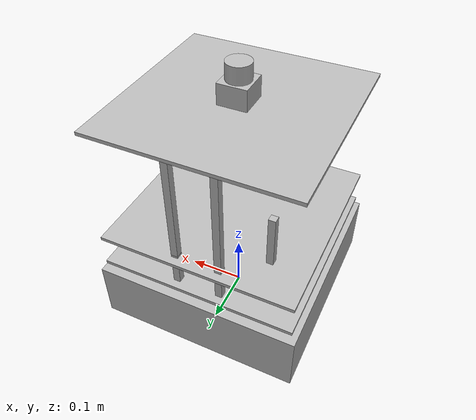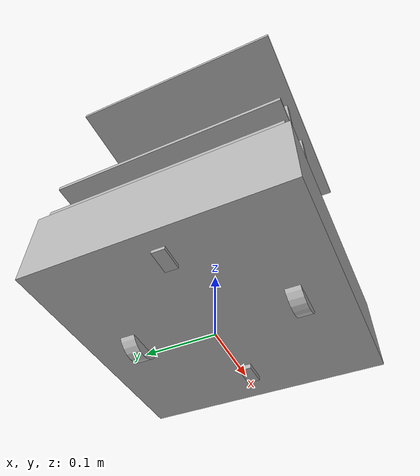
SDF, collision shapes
<?xml version="1.0"?>
<sdf version='1.6'>
  <model name='turtlebot2_harmonic'>
    <link name='base_footprint'>
      <pose frame=''>0 0 0 0 -0 0</pose>

      <inertial>
        <pose frame=''>-0.009496 1.3e-05 0.135573 0 -0 0</pose>
        <mass>4.9213</mass>
        <inertia>
          <ixx>0.142129</ixx>
          <ixy>-4.09257e-06</ixy>
          <ixz>0.0154899</ixz>
          <iyy>0.140784</iyy>
          <iyz>6.52071e-06</iyz>
          <izz>0.0801071</izz>
        </inertia>
      </inertial>

      <collision name='base_footprint_fixed_joint_lump__base_collision'>
        <pose frame=''>0 0 0.06969 0 -0 0</pose>
        <geometry>
          <box>
            <size>0.356 0.356 0.10938</size>
          </box>
        </geometry>
      </collision>

      <collision name='base_footprint_fixed_joint_lump__caster_back_link_collision_2'>
        <pose frame=''>-0.135 0 0.0192 -1.5708 0 0</pose>
        <geometry>
          <box>
            <size>0.034 0.0176 0.0176</size>
          </box>
        </geometry>
        <surface>
          <contact>
            <ode>
              <kp>1e+06</kp>
              <kd>100</kd>
              <max_vel>1</max_vel>
              <min_depth>0.001</min_depth>
            </ode>
          </contact>
          <friction>
            <ode>
              <mu>0</mu>
              <mu2>0</mu2>
            </ode>
          </friction>
        </surface>
      </collision>

      <collision name='base_footprint_fixed_joint_lump__caster_front_link_collision_3'>
        <pose frame=''>0.115 0 0.0172 -1.5708 0 0</pose>
        <geometry>
          <box>
            <size>0.034 0.0176 0.0176</size>
          </box>
        </geometry>
        <surface>
          <contact>
            <ode>
              <kp>1e+06</kp>
              <kd>100</kd>
              <max_vel>1</max_vel>
              <min_depth>0.001</min_depth>
            </ode>
          </contact>
          <friction>
            <ode>
              <mu>0</mu>
              <mu2>0</mu2>
            </ode>
          </friction>
        </surface>
      </collision>

      <collision name='base_footprint_fixed_joint_lump__plate_bottom_link_collision_4'>
        <pose frame=''>0 0 0.1408 0 -0 0</pose>
        <geometry>
          <box>
            <size>0.34 0.34 0.006</size>
          </box>
        </geometry>
      </collision>

      <collision name='base_footprint_fixed_joint_lump__plate_middle_link_collision_5'>
        <pose frame=''>0 0 0.1976 0 -0 0</pose>
        <geometry>
          <box>
            <size>0.34 0.34 0.006</size>
          </box>
        </geometry>
      </collision>

      <collision name='base_footprint_fixed_joint_lump__plate_top_link_collision_6'>
        <pose frame=''>0 0 0.4068 0 -0 0</pose>
        <geometry>
          <box>
            <size>0.34 0.34 0.006</size>
          </box>
        </geometry>
      </collision>

      <collision name='base_footprint_fixed_joint_lump__pole_bottom_0_link_collision_7'>
        <pose frame=''>0.12 0.082 0.113 0 -0 0</pose>
        <geometry>
          <box>
            <size>0.012 0.012 0.0492</size>
          </box>
        </geometry>
      </collision>

      <collision name='base_footprint_fixed_joint_lump__pole_bottom_1_link_collision_8'>
        <pose frame=''>0.055 0.12 0.113 0 -0 0</pose>
        <geometry>
          <box>
            <size>0.012 0.012 0.0492</size>
          </box>
        </geometry>
      </collision>

      <collision name='base_footprint_fixed_joint_lump__pole_bottom_2_link_collision_9'>
        <pose frame=''>-0.055 0.12 0.113 0 -0 0</pose>
        <geometry>
          <box>
            <size>0.012 0.012 0.0492</size>
          </box>
        </geometry>
      </collision>

      <collision name='base_footprint_fixed_joint_lump__pole_bottom_3_link_collision_10'>
        <pose frame=''>0.12 -0.082 0.113 0 -0 0</pose>
        <geometry>
          <box>
            <size>0.012 0.012 0.0492</size>
          </box>
        </geometry>
      </collision>

      <collision name='base_footprint_fixed_joint_lump__pole_bottom_4_link_collision_11'>
        <pose frame=''>0.055 -0.12 0.113 0 -0 0</pose>
        <geometry>
          <box>
            <size>0.012 0.012 0.0492</size>
          </box>
        </geometry>
      </collision>

      <collision name='base_footprint_fixed_joint_lump__pole_bottom_5_link_collision_12'>
        <pose frame=''>-0.055 -0.12 0.113 0 -0 0</pose>
        <geometry>
          <box>
            <size>0.012 0.012 0.0492</size>
          </box>
        </geometry>
      </collision>

      <collision name='base_footprint_fixed_joint_lump__pole_kinect_0_link_collision_13'>
        <pose frame=''>-0.1024 0.098 0.2474 0 -0 0</pose>
        <geometry>
          <box>
            <size>0.012 0.012 0.0936</size>
          </box>
        </geometry>
      </collision>

      <collision name='base_footprint_fixed_joint_lump__pole_kinect_1_link_collision_14'>
        <pose frame=''>-0.1024 -0.098 0.2474 0 -0 0</pose>
        <geometry>
          <box>
            <size>0.012 0.012 0.0936</size>
          </box>
        </geometry>
      </collision>

      <collision name='base_footprint_fixed_joint_lump__pole_middle_0_link_collision_15'>
        <pose frame=''>0.0381 0.1505 0.1742 0 -0 0</pose>
        <geometry>
          <box>
            <size>0.012 0.012 0.0608</size>
          </box>
        </geometry>
      </collision>

      <collision name='base_footprint_fixed_joint_lump__pole_middle_1_link_collision_16'>
        <pose frame=''>0.0381 -0.1505 0.1742 0 -0 0</pose>
        <geometry>
          <box>
            <size>0.012 0.012 0.0608</size>
          </box>
        </geometry>
      </collision>

      <collision name='base_footprint_fixed_joint_lump__pole_middle_2_link_collision_17'>
        <pose frame=''>-0.0381 0.1505 0.1742 0 -0 0</pose>
        <geometry>
          <box>
            <size>0.012 0.012 0.0608</size>
          </box>
        </geometry>
      </collision>

      <collision name='base_footprint_fixed_joint_lump__pole_middle_3_link_collision_18'>
        <pose frame=''>-0.0381 -0.1505 0.1742 0 -0 0</pose>
        <geometry>
          <box>
            <size>0.012 0.012 0.0608</size>
          </box>
        </geometry>
      </collision>

      <collision name='base_footprint_fixed_joint_lump__pole_top_0_link_collision_19'>
        <pose frame=''>0.0381 0.1505 0.3022 0 -0 0</pose>
        <geometry>
          <box>
            <size>0.012 0.012 0.2032</size>
          </box>
        </geometry>
      </collision>

      <collision name='base_footprint_fixed_joint_lump__pole_top_1_link_collision_20'>
        <pose frame=''>0.0381 -0.1505 0.3022 0 -0 0</pose>
        <geometry>
          <box>
            <size>0.012 0.012 0.2032</size>
          </box>
        </geometry>
      </collision>

      <collision name='base_footprint_fixed_joint_lump__pole_top_2_link_collision_21'>
        <pose frame=''>-0.0381 0.1505 0.3022 0 -0 0</pose>
        <geometry>
          <box>
            <size>0.012 0.012 0.2032</size>
          </box>
        </geometry>
      </collision>

      <collision name='base_footprint_fixed_joint_lump__pole_top_3_link_collision_22'>
        <pose frame=''>-0.0381 -0.1505 0.3022 0 -0 0</pose>
        <geometry>
          <box>
            <size>0.012 0.012 0.2032</size>
          </box>
        </geometry>
      </collision>

      <visual name='base_footprint_fixed_joint_lump__base_link_visual'>
        <pose frame=''>0.001 0 0.06219 0 -0 0</pose>
        <geometry>
          <mesh>
            <scale>1 1 1</scale>
            <uri>model://turtlebot2_harmonic/meshes/main_body.dae</uri>
          </mesh>
        </geometry>
      </visual>

      <visual name='base_footprint_fixed_joint_lump__camera_link_visual_1'>
        <pose frame=''>-0.118 0 0.2812 0 -0 1.5708</pose>
        <geometry>
          <mesh>
            <scale>1 1 1</scale>
            <uri>model://turtlebot2_harmonic/meshes/sensors/kinect.dae</uri>
          </mesh>
        </geometry>
      </visual>

      <visual name='base_footprint_fixed_joint_lump__plate_bottom_link_visual_2'>
        <pose frame=''>0.02364 0 0.1408 0 -0 0</pose>
        <geometry>
          <mesh>
            <scale>1 1 1</scale>
            <uri>model://turtlebot2_harmonic/meshes/stacks/hexagons/plate_bottom.dae</uri>
          </mesh>
        </geometry>
      </visual>

      <visual name='base_footprint_fixed_joint_lump__plate_middle_link_visual_3'>
        <pose frame=''>-0.01364 0 0.1976 0 -0 0</pose>
        <geometry>
          <mesh>
            <scale>1 1 1</scale>
            <uri>model://turtlebot2_harmonic/meshes/stacks/hexagons/plate_middle.dae</uri>
          </mesh>
        </geometry>
      </visual>

      <visual name='base_footprint_fixed_joint_lump__plate_top_link_visual_4'>
        <pose frame=''>-0.01364 0 0.4068 0 -0 0</pose>
        <geometry>
          <mesh>
            <scale>1 1 1</scale>
            <uri>model://turtlebot2_harmonic/meshes/stacks/hexagons/plate_top.dae</uri>
          </mesh>
        </geometry>
      </visual>

      <visual name='base_footprint_fixed_joint_lump__pole_bottom_0_link_visual_5'>
        <pose frame=''>0.12 0.082 0.113 0 -0 0</pose>
        <geometry>
          <mesh>
            <scale>1 1 1</scale>
            <uri>model://turtlebot2_harmonic/meshes/stacks/hexagons/pole_bottom.dae</uri>
          </mesh>
        </geometry>
      </visual>

      <visual name='base_footprint_fixed_joint_lump__pole_bottom_1_link_visual_6'>
        <pose frame=''>0.055 0.12 0.113 0 -0 0</pose>
        <geometry>
          <mesh>
            <scale>1 1 1</scale>
            <uri>model://turtlebot2_harmonic/meshes/stacks/hexagons/pole_bottom.dae</uri>
          </mesh>
        </geometry>
      </visual>

      <visual name='base_footprint_fixed_joint_lump__pole_bottom_2_link_visual_7'>
        <pose frame=''>-0.055 0.12 0.113 0 -0 0</pose>
        <geometry>
          <mesh>
            <scale>1 1 1</scale>
            <uri>model://turtlebot2_harmonic/meshes/stacks/hexagons/pole_bottom.dae</uri>
          </mesh>
        </geometry>
      </visual>

      <visual name='base_footprint_fixed_joint_lump__pole_bottom_3_link_visual_8'>
        <pose frame=''>0.12 -0.082 0.113 0 -0 0</pose>
        <geometry>
          <mesh>
            <scale>1 1 1</scale>
            <uri>model://turtlebot2_harmonic/meshes/stacks/hexagons/pole_bottom.dae</uri>
          </mesh>
        </geometry>
      </visual>

      <visual name='base_footprint_fixed_joint_lump__pole_bottom_4_link_visual_9'>
        <pose frame=''>0.055 -0.12 0.113 0 -0 0</pose>
        <geometry>
          <mesh>
            <scale>1 1 1</scale>
            <uri>model://turtlebot2_harmonic/meshes/stacks/hexagons/pole_bottom.dae</uri>
          </mesh>
        </geometry>
      </visual>

      <visual name='base_footprint_fixed_joint_lump__pole_bottom_5_link_visual_10'>
        <pose frame=''>-0.055 -0.12 0.113 0 -0 0</pose>
        <geometry>
          <mesh>
            <scale>1 1 1</scale>
            <uri>model://turtlebot2_harmonic/meshes/stacks/hexagons/pole_bottom.dae</uri>
          </mesh>
        </geometry>
      </visual>

      <visual name='base_footprint_fixed_joint_lump__pole_kinect_0_link_visual_11'>
        <pose frame=''>-0.1024 0.098 0.2374 0 -0 0</pose>
        <geometry>
          <mesh>
            <scale>1 1 1</scale>
            <uri>model://turtlebot2_harmonic/meshes/sensors/sensor_pole.dae</uri>
          </mesh>
        </geometry>
      </visual>

      <visual name='base_footprint_fixed_joint_lump__pole_kinect_1_link_visual_12'>
        <pose frame=''>-0.1024 -0.098 0.2374 0 -0 0</pose>
        <geometry>
          <mesh>
            <scale>1 1 1</scale>
            <uri>model://turtlebot2_harmonic/meshes/sensors/sensor_pole.dae</uri>
          </mesh>
        </geometry>
      </visual>

      <visual name='base_footprint_fixed_joint_lump__pole_middle_0_link_visual_13'>
        <pose frame=''>0.0381 0.1505 0.1742 3.14159 -0 3.14159</pose>
        <geometry>
          <mesh>
            <scale>1 1 1</scale>
            <uri>model://turtlebot2_harmonic/meshes/stacks/hexagons/pole_middle.dae</uri>
          </mesh>
        </geometry>
      </visual>

      <visual name='base_footprint_fixed_joint_lump__pole_middle_1_link_visual_14'>
        <pose frame=''>0.0381 -0.1505 0.1742 3.14159 -0 3.14159</pose>
        <geometry>
          <mesh>
            <scale>1 1 1</scale>
            <uri>model://turtlebot2_harmonic/meshes/stacks/hexagons/pole_middle.dae</uri>
          </mesh>
        </geometry>
      </visual>

      <visual name='base_footprint_fixed_joint_lump__pole_middle_2_link_visual_15'>
        <pose frame=''>-0.0381 0.1505 0.1742 3.14159 -0 3.14159</pose>
        <geometry>
          <mesh>
            <scale>1 1 1</scale>
            <uri>model://turtlebot2_harmonic/meshes/stacks/hexagons/pole_middle.dae</uri>
          </mesh>
        </geometry>
      </visual>

      <visual name='base_footprint_fixed_joint_lump__pole_middle_3_link_visual_16'>
        <pose frame=''>-0.0381 -0.1505 0.1742 3.14159 -0 3.14159</pose>
        <geometry>
          <mesh>
            <scale>1 1 1</scale>
            <uri>model://turtlebot2_harmonic/meshes/stacks/hexagons/pole_middle.dae</uri>
          </mesh>
        </geometry>
      </visual>

      <visual name='base_footprint_fixed_joint_lump__pole_top_0_link_visual_17'>
        <pose frame=''>0.0381 0.1505 0.3022 0 -0 0</pose>
        <geometry>
          <mesh>
            <scale>1 1 1</scale>
            <uri>model://turtlebot2_harmonic/meshes/stacks/hexagons/pole_top.dae</uri>
          </mesh>
        </geometry>
      </visual>

      <visual name='base_footprint_fixed_joint_lump__pole_top_1_link_visual_18'>
        <pose frame=''>0.0381 -0.1505 0.3022 0 -0 0</pose>
        <geometry>
          <mesh>
            <scale>1 1 1</scale>
            <uri>model://turtlebot2_harmonic/meshes/stacks/hexagons/pole_top.dae</uri>
          </mesh>
        </geometry>
      </visual>

      <visual name='base_footprint_fixed_joint_lump__pole_top_2_link_visual_19'>
        <pose frame=''>-0.0381 0.1505 0.3022 0 -0 0</pose>
        <geometry>
          <mesh>
            <scale>1 1 1</scale>
            <uri>model://turtlebot2_harmonic/meshes/stacks/hexagons/pole_top.dae</uri>
          </mesh>
        </geometry>
      </visual>

      <visual name='base_footprint_fixed_joint_lump__pole_top_3_link_visual_20'>
        <pose frame=''>-0.0381 -0.1505 0.3022 0 -0 0</pose>
        <geometry>
          <mesh>
            <scale>1 1 1</scale>
            <uri>model://turtlebot2_harmonic/meshes/stacks/hexagons/pole_top.dae</uri>
          </mesh>
        </geometry>
      </visual>

      <velocity_decay/>

      <sensor name='bumpers' type='contact'>
        <always_on>1</always_on>
        <update_rate>5</update_rate>
        <visualize>0</visualize>
        <contact>
          <collision>base_footprint_fixed_joint_lump__base_collision</collision>
          <topic>__default_topic__</topic>
        </contact>
        <pose frame=''>0 0 0.0102 0 -0 0</pose>
      </sensor>

      <velocity_decay/>

      <sensor name='camera' type='camera'>
        <always_on>1</always_on>
        <update_rate>5</update_rate>
        <topic>/depth_camera/image</topic>
        <camera name='__default__'>
          <horizontal_fov>1.0472</horizontal_fov>

          <image>
            <format>B8G8R8</format>
            <width>640</width>
            <height>480</height>
          </image>
          <clip>
            <near>0.1</near>
            <far>8</far>
          </clip>
        </camera>
        <pose frame=''>-0.118 0 0.2812 0 -0 0</pose>
      </sensor>

      <velocity_decay/>

      <velocity_decay/>

      <velocity_decay/>

      <gravity>1</gravity>

      <velocity_decay/>

      <sensor name='imu' type='imu'>
        <always_on>1</always_on>
        <update_rate>5</update_rate>
        <visualize>0</visualize>
        <topic>/robot/imu</topic>
        <imu>
          <angular_velocity>
            <x>
              <noise type='gaussian'>
                <mean>0</mean>
                <stddev>1.96e-06</stddev>
                <bias_mean>0</bias_mean>
                <bias_stddev>0</bias_stddev>
              </noise>
            </x>
            <y>
              <noise type='gaussian'>
                <mean>0</mean>
                <stddev>1.96e-06</stddev>
                <bias_mean>0</bias_mean>
                <bias_stddev>0</bias_stddev>
              </noise>
            </y>
            <z>
              <noise type='gaussian'>
                <mean>0</mean>
                <stddev>1.96e-06</stddev>
                <bias_mean>0</bias_mean>
                <bias_stddev>0</bias_stddev>
              </noise>
            </z>
          </angular_velocity>
          <linear_acceleration>
            <x>
              <noise type='gaussian'>
                <mean>0</mean>
                <stddev>0.017</stddev>
                <bias_mean>0.1</bias_mean>
                <bias_stddev>0.001</bias_stddev>
              </noise>
            </x>
            <y>
              <noise type='gaussian'>
                <mean>0</mean>
                <stddev>0.017</stddev>
                <bias_mean>0.1</bias_mean>
                <bias_stddev>0.001</bias_stddev>
              </noise>
            </y>
            <z>
              <noise type='gaussian'>
                <mean>0</mean>
                <stddev>0.017</stddev>
                <bias_mean>0.1</bias_mean>
                <bias_stddev>0.001</bias_stddev>
              </noise>
            </z>
          </linear_acceleration>
        </imu>
        <pose frame=''>0.056 0.062 0.0304 0 -0 0</pose>
      </sensor>

    </link>

    <link name='wheel_left_link'>
      <pose frame=''>0 0.115 0.0352 -1.5708 0 0</pose>

      <inertial>
        <pose frame=''>0 0 0 0 -0 0</pose>
        <mass>0.01</mass>
        <inertia>
          <ixx>0.001</ixx>
          <ixy>0</ixy>
          <ixz>0</ixz>
          <iyy>0.001</iyy>
          <iyz>0</iyz>
          <izz>0.001</izz>
        </inertia>
      </inertial>

      <collision name='wheel_left_link_collision'>
        <pose frame=''>0 0 0 0 -0 0</pose>
        <geometry>
          <cylinder>
            <length>0.0206</length>
            <radius>0.0352</radius>
          </cylinder>
        </geometry>
        <surface>
          <contact>
            <ode>
              <kp>1e+06</kp>
              <kd>100</kd>
              <max_vel>1</max_vel>
              <min_depth>0.001</min_depth>
            </ode>
          </contact>
          <friction>
            <ode>
              <mu>1</mu>
              <mu2>1</mu2>
            </ode>
          </friction>
        </surface>
      </collision>

      <visual name='wheel_left_link_visual'>
        <pose frame=''>0 0 0 0 -0 0</pose>
        <geometry>
          <mesh>
            <scale>1 1 1</scale>
            <uri>model://turtlebot2_harmonic/meshes/wheel.dae</uri>
          </mesh>
        </geometry>
      </visual>

      <gravity>1</gravity>

      <velocity_decay/>

    </link>

    <joint name='wheel_left_joint' type='revolute'>
      <child>wheel_left_link</child>
      <parent>base_footprint</parent>
      <axis>
        <xyz>0 1 0</xyz>
        <limit>
          <lower>-1e+16</lower>
          <upper>1e+16</upper>
        </limit>
        <dynamics>
          <spring_reference>0</spring_reference>
          <spring_stiffness>0</spring_stiffness>
        </dynamics>
        <use_parent_model_frame>1</use_parent_model_frame>
      </axis>
    </joint>

    <link name='wheel_right_link'>
      <pose frame=''>0 -0.115 0.0352 -1.5708 0 0</pose>

      <inertial>
        <pose frame=''>0 0 0 0 -0 0</pose>
        <mass>0.01</mass>
        <inertia>
          <ixx>0.001</ixx>
          <ixy>0</ixy>
          <ixz>0</ixz>
          <iyy>0.001</iyy>
          <iyz>0</iyz>
          <izz>0.001</izz>
        </inertia>
      </inertial>

      <collision name='wheel_right_link_collision'>
        <pose frame=''>0 0 0 0 -0 0</pose>
        <geometry>
          <cylinder>
            <length>0.0206</length>
            <radius>0.035</radius>
          </cylinder>
        </geometry>
        <surface>
          <contact>
            <ode>
              <kp>1e+06</kp>
              <kd>100</kd>
              <max_vel>1</max_vel>
              <min_depth>0.001</min_depth>
            </ode>
          </contact>
          <friction>
            <ode>
              <mu>1</mu>
              <mu2>1</mu2>
            </ode>
          </friction>
        </surface>
      </collision>

      <visual name='wheel_right_link_visual'>
        <pose frame=''>0 0 0 0 -0 0</pose>
        <geometry>
          <mesh>
            <scale>1 1 1</scale>
            <uri>model://turtlebot2_harmonic/meshes/wheel.dae</uri>
          </mesh>
        </geometry>
      </visual>

      <gravity>1</gravity>

      <velocity_decay/>

    </link>

    <joint name='wheel_right_joint' type='revolute'>
      <child>wheel_right_link</child>
      <parent>base_footprint</parent>
      <axis>
        <xyz>0 1 0</xyz>
        <limit>
          <lower>-1e+16</lower>
          <upper>1e+16</upper>
        </limit>
        <dynamics>
          <spring_reference>0</spring_reference>
          <spring_stiffness>0</spring_stiffness>
        </dynamics>
        <use_parent_model_frame>1</use_parent_model_frame>
      </axis>
    </joint>

    <static>0</static>

    <link name='laser'>
      <pose>0.0 0.000000 0.44 0.000000 0.000000 0.000000</pose>
      <gravity>0</gravity>

      <inertial>
        <mass>0.100000</mass>
        <inertia>
          <ixx>1.000000</ixx>
          <ixy>0.000000</ixy>
          <ixz>0.000000</ixz>
          <iyy>1.000000</iyy>
          <iyz>0.000000</iyz>
          <izz>1.000000</izz>
        </inertia>
      </inertial>

      <visual name='visual'>
        <geometry>
          <mesh>
            <uri>model://hokuyo/meshes/hokuyo.dae</uri>
          </mesh>
        </geometry>
      </visual>

      <collision name='collision-base'>
        <pose>0.000000 0.000000 -0.014500 0.000000 0.000000 0.000000</pose>
        <geometry>
          <box>
            <size>0.050000 0.050000 0.041000</size>
          </box>
        </geometry>
        <max_contacts>10</max_contacts>
        <surface>
          <bounce/>
          <friction>
            <ode/>
          </friction>
          <contact>
            <ode/>
          </contact>
        </surface>
      </collision>

      <collision name='collision-top'>
        <pose>0.000000 0.000000 0.020500 0.000000 0.000000 0.000000</pose>
        <geometry>
          <cylinder>
            <radius>0.021000</radius>
            <length>0.029000</length>
          </cylinder>
        </geometry>
        <max_contacts>10</max_contacts>
        <surface>
          <bounce/>
          <friction>
            <ode/>
          </friction>
          <contact>
            <ode/>
          </contact>
        </surface>
      </collision>

      <sensor name='gpu_lidar' type='gpu_lidar'>
        <ray>
          <scan>
            <horizontal>
              <samples>90</samples>
              <resolution>1.000000</resolution>
              <min_angle>-3.140000</min_angle>
              <max_angle>3.140000</max_angle>
            </horizontal>
          </scan>
          <range>
            <min>0.080000</min>
            <max>10.000000</max>
            <resolution>0.010000</resolution>
          </range>
        </ray>
        <update_rate>5.000000</update_rate>
        <always_on>1</always_on>
        <visualize>0</visualize>
        <topic>/scan</topic>
      </sensor>

      <velocity_decay>
        <linear>0.000000</linear>
        <angular>0.000000</angular>
      </velocity_decay>

      <self_collide>0</self_collide>

      <kinematic>0</kinematic>

    </link>

    <joint name='joint_laser' type='fixed'>
      <parent>base_footprint</parent>
      <child>laser</child>
      <pose>0 0 0 0 0 0</pose>
    </joint>

    <plugin
        filename="gz-sim-imu-system"
        name="gz::sim::systems::Imu">
    </plugin>

    <plugin filename="gz-sim-diff-drive-system" name="gz::sim::systems::DiffDrive">
      <publish_tf>1</publish_tf>
      <left_joint>wheel_left_joint</left_joint>
      <right_joint>wheel_right_joint</right_joint>
      <wheel_separation>.230</wheel_separation>
      <wheel_diameter>0.070</wheel_diameter>
      <topic>/cmd_vel</topic>
    </plugin>

    <plugin filename="gz-sim-odometry-publisher-system" name="gz::sim::systems::OdometryPublisher">
      <odom_frame>odom</odom_frame>
      <robot_base_frame>base_footprint</robot_base_frame>
      <odom_publish_frequency>20.0</odom_publish_frequency>
      <odom_topic>/odom</odom_topic>
      <dimensions>3</dimensions>
    </plugin>

  </model>
</sdf>
